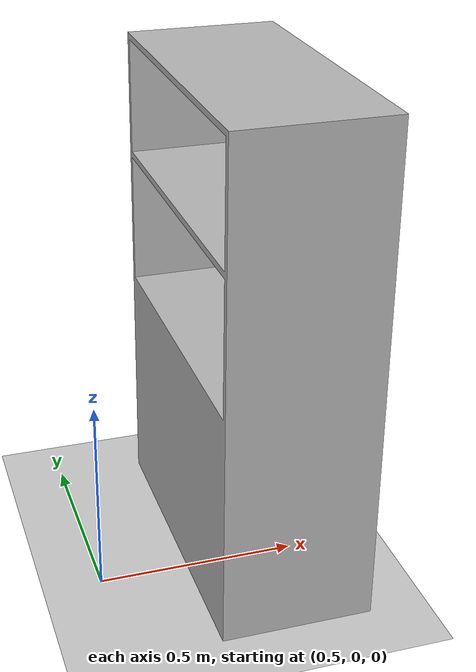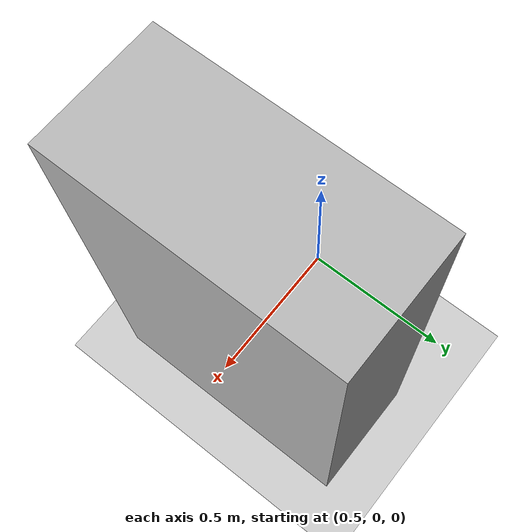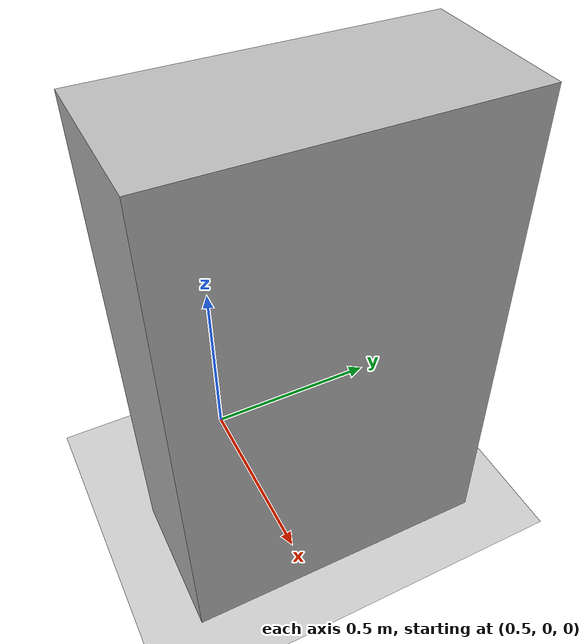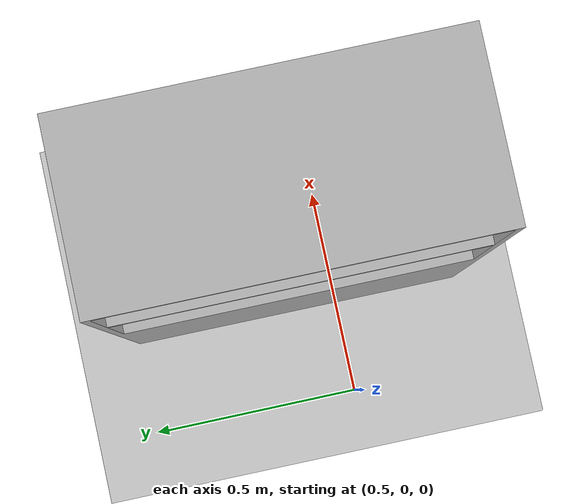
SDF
<?xml version="1.0"?>
<sdf version="1.4">
  <world name="default">
    <include>
      <uri>model://ground_plane</uri>
    </include>
    <include>
      <uri>model://sun</uri>
    </include>
    <model name="my_mesh">
      <pose>1.1 -0.3 0 0 0 1.57</pose>
      <static>true</static>
      <link name="body">
        <collision name="collision">
         <geometry>
            <mesh> <uri>model://shelf/shelf.stl</uri> </mesh>
         </geometry>
        </collision>
        <visual name="visual">
         <geometry>
            <mesh> <uri>model://shelf/shelf.stl</uri> </mesh>
         </geometry>
         <material> <!-- Wheel material -->
            <script>
              <uri>model://shelf/media/materials/repeated.material</uri>
              <name>RepeatedTexture/s</name>
            </script>
         </material> <!-- End wheel material -->
        </visual>
      </link>
    </model>
  </world>
</sdf>
